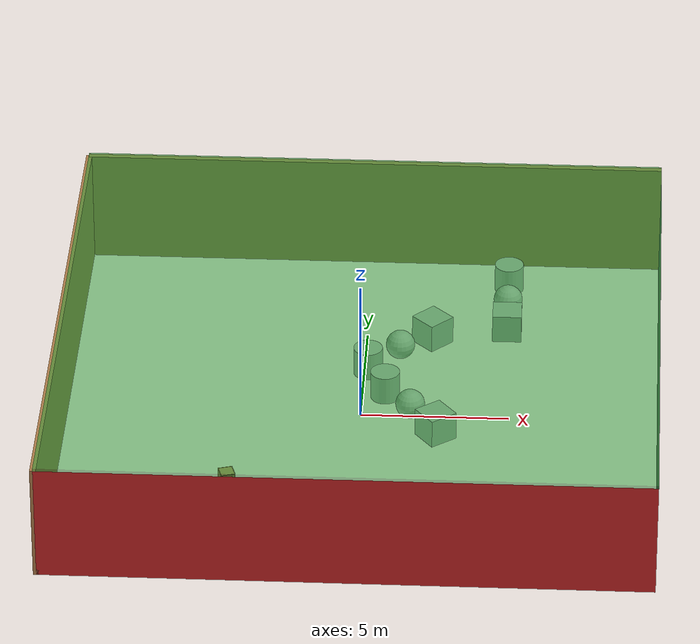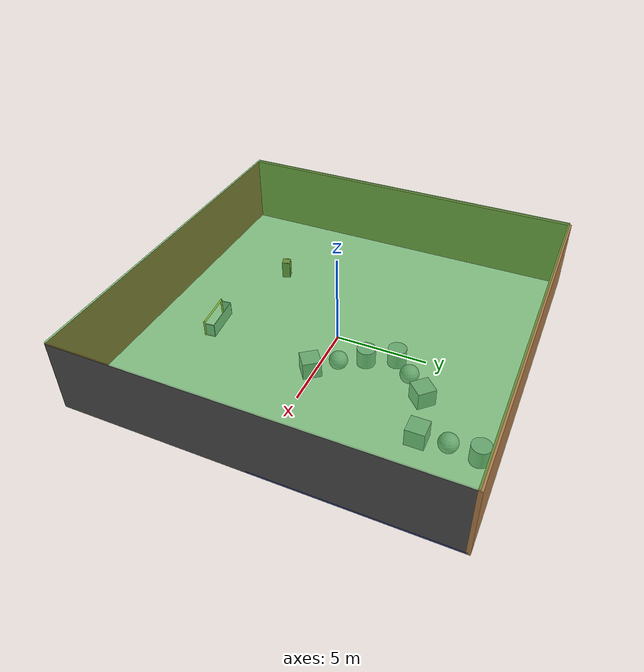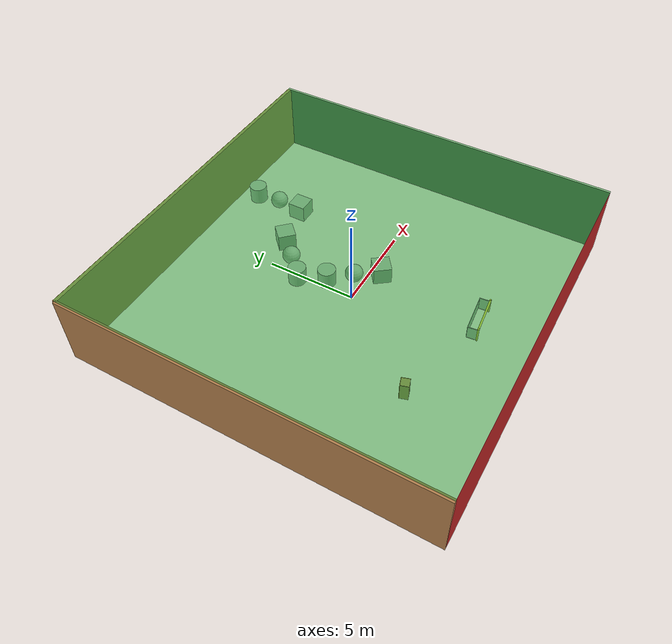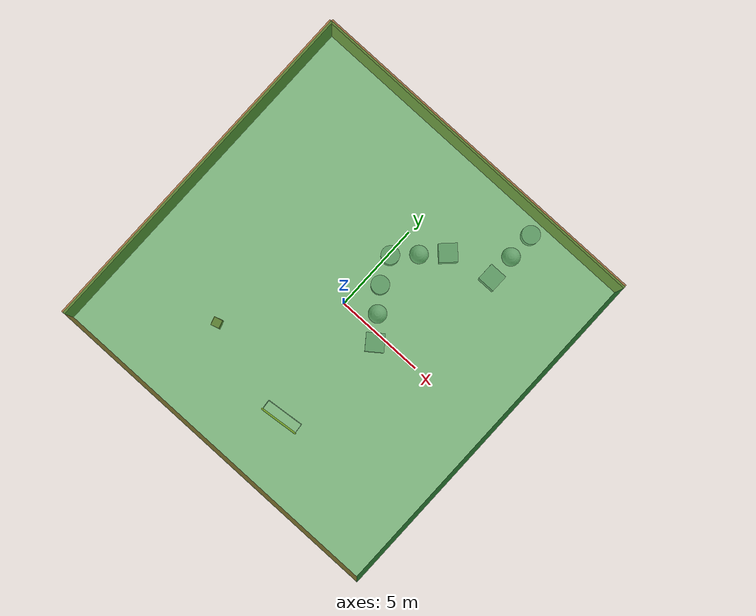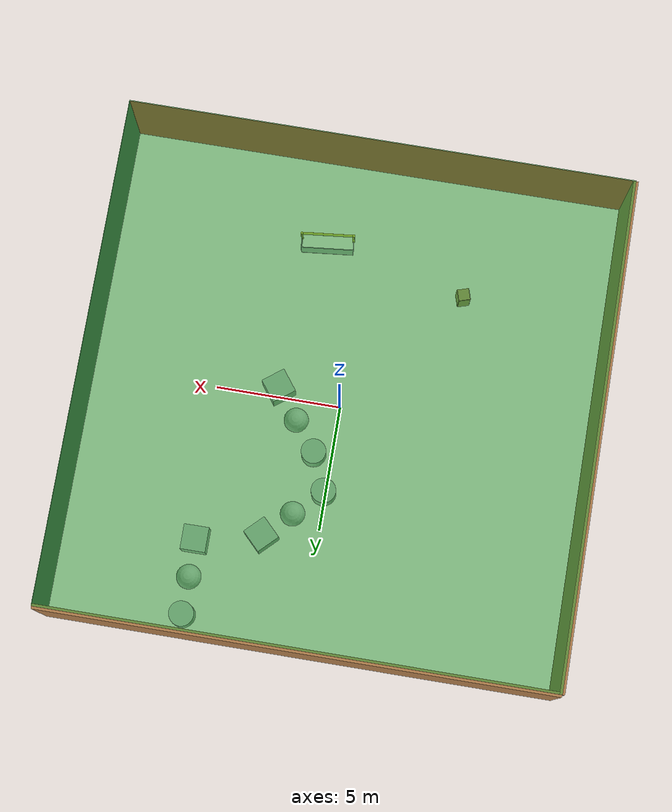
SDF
<sdf version="1.4">
 <world name="default">
  <physics type="ode">
   <max_step_size>0.001</max_step_size>
   <real_time_factor>1</real_time_factor>
   <real_time_update_rate>1000</real_time_update_rate>
   <gravity>0 0 -9.8</gravity>
  </physics>
  <scene><ambient>0.4 0.4 0.4 1</ambient><background>0.7 0.7 0.7 1</background><shadows>1</shadows></scene>
  <model name="Surrounding">
   <static>1</static>
   <link name="Ceiling">
    <collision name="Ceiling_Collision"><geometry><box><size>20 20 0.1</size></box></geometry></collision>
    <visual name="Ceiling_Visual">
     <geometry><box><size>20 20 0.1</size></box></geometry>
     <material>
      <script><uri>file://media/materials/scripts/gazebo.material</uri><name>Gazebo/GreenTransparent</name></script>
     </material>
    </visual>
    <pose>0 0 4.05 0 0 0</pose>
   </link>
   <link name="Wall_South">
    <collision name="Wall_South_Collision">
     <geometry><box><size>20 0 4</size></box></geometry>
     <pose>0 0 2 0 -0 0</pose>
    </collision>
    <visual name="Wall_South_Visual">
     <pose>0 0 2 0 -0 0</pose>
     <geometry><box><size>20 0 4</size></box></geometry>
     <material>
      <script><uri>file://media/materials/scripts/gazebo.material</uri><name>Gazebo/RedBright</name></script>
     </material>
    </visual>
    <velocity_decay><linear>0</linear><angular>0</angular></velocity_decay>
    <pose>0 -10 0 0 -0 0</pose>
   </link>
   <link name="Wall_East">
    <collision name="Wall_21_Collision">
     <geometry><box><size>20 0 4</size></box></geometry>
     <pose>0 0 2 0 -0 0</pose>
    </collision>
    <visual name="Wall_21_Visual">
     <pose>0 0 2 0 -0 0</pose>
     <geometry><box><size>20 0 4</size></box></geometry>
     <material>
      <script><uri>file://media/materials/scripts/gazebo.material</uri><name>Gazebo/DarkGrey</name></script>
     </material>
    </visual>
    <velocity_decay><linear>0</linear><angular>0</angular></velocity_decay>
    <pose>10 0 0 0 -0 1.5708</pose>
   </link>
   <link name="Wall_North">
    <collision name="Wall_22_Collision">
     <geometry><box><size>20 0.2 4</size></box></geometry>
     <pose>0 0 2 0 -0 0</pose>
    </collision>
    <visual name="Wall_22_Visual">
     <pose>0 0 2 0 -0 0</pose>
     <geometry><box><size>20 0.2 4</size></box></geometry>
     <material>
      <script><uri>file://media/materials/scripts/gazebo.material</uri><name>Gazebo/WoodFloor</name></script>
     </material>
    </visual>
    <velocity_decay><linear>0</linear><angular>0</angular></velocity_decay>
    <pose>0 10 0 0 -0 0</pose>
   </link>
   <link name="Wall_West">
    <collision name="Wall_23_Collision">
     <geometry><box><size>20 0.2 4</size></box></geometry>
     <pose>0 0 2 0 -0 0</pose>
    </collision>
    <visual name="Wall_23_Visual">
     <pose>0 0 2 0 -0 0</pose>
     <geometry><box><size>20 0.2 4</size></box></geometry>
     <material>
      <script><uri>file://media/materials/scripts/gazebo.material</uri><name>Gazebo/Wood</name></script>
     </material>
    </visual>
    <velocity_decay><linear>0</linear><angular>0</angular></velocity_decay>
    <pose>-10 0 0 0 0 -1.5708</pose>
   </link>
   <link name="Ground_link">
    <collision name="collision">
     <pose>0 0 .05 0 -0 0</pose>
     <geometry><box><size>20 20 0.1</size></box></geometry>
    </collision>
    <visual name="visual">
     <pose>0 0 .05 0 -0 0</pose>
     <geometry><box><size>20 20 0.1</size></box></geometry>
     <material>
      <script><uri>file://media/materials/scripts/gazebo.material</uri><name>Gazebo/BlueTransparent</name></script>
     </material>
    </visual>
   </link>
   <static>1</static>
  </model>
  <spherical_coordinates>
   <surface_model>EARTH_WGS84</surface_model>
   <latitude_deg>0</latitude_deg>
   <longitude_deg>0</longitude_deg>
   <elevation>0</elevation>
   <heading_deg>0</heading_deg>
  </spherical_coordinates>
  <light name="lightball_0" type="diffuse">
   <diffuse>0.8 0.8 0.8 1</diffuse>
   <specular>0.2 0.2 0.2 1</specular>
   <attenuation>
    <range>100</range>
    <constant>0.7</constant>
    <linear>0.01</linear>
    <quadratic>0.001</quadratic>
   </attenuation>
   <direction>-0.5 0.1 -0.9</direction>
   <pose>-5.47530883925 1.55294142825 2.80174444593 0 0 0</pose>
  </light>
  <light name="lightball_1" type="diffuse">
   <diffuse>0.8 0.8 0.8 1</diffuse>
   <specular>0.2 0.2 0.2 1</specular>
   <attenuation>
    <range>100</range>
    <constant>0.7</constant>
    <linear>0.01</linear>
    <quadratic>0.001</quadratic>
   </attenuation>
   <direction>-0.5 0.1 -0.9</direction>
   <pose>-2.08320925146 -0.249660166815 2.19767639317 0 0 0</pose>
  </light>
  <light name="lightball_2" type="diffuse">
   <diffuse>0.8 0.8 0.8 1</diffuse>
   <specular>0.2 0.2 0.2 1</specular>
   <attenuation>
    <range>100</range>
    <constant>0.7</constant>
    <linear>0.01</linear>
    <quadratic>0.001</quadratic>
   </attenuation>
   <direction>-0.5 0.1 -0.9</direction>
   <pose>9.45485373752 -7.52137572082 0.518158806694 0 0 0</pose>
  </light>
  <light name="lightball_3" type="diffuse">
   <diffuse>0.8 0.8 0.8 1</diffuse>
   <specular>0.2 0.2 0.2 1</specular>
   <attenuation>
    <range>100</range>
    <constant>0.7</constant>
    <linear>0.01</linear>
    <quadratic>0.001</quadratic>
   </attenuation>
   <direction>-0.5 0.1 -0.9</direction>
   <pose>-1.88947275743 4.13019689076 1.33438369903 0 0 0</pose>
  </light>
  <light name="lightball_4" type="diffuse">
   <diffuse>0.8 0.8 0.8 1</diffuse>
   <specular>0.2 0.2 0.2 1</specular>
   <attenuation>
    <range>100</range>
    <constant>0.7</constant>
    <linear>0.01</linear>
    <quadratic>0.001</quadratic>
   </attenuation>
   <direction>-0.5 0.1 -0.9</direction>
   <pose>-6.0407638143 8.29052428507 0.656286092464 0 0 0</pose>
  </light>
  <include><uri>model://cabinet</uri><pose>-4.15952946057 -5.18721390926 0 0 0 1.87616901022</pose></include>
  <include>
   <uri>model://robocup_3Dsim_goal</uri>
   <pose>1.61358128446 -6.78226429349 0 0 0 1.67159726296</pose>
  </include>
  <include>
   <uri>model://textured_shapes</uri>
   <pose>1.64349712727 0.774169784381 0 0 0 0.648910081637</pose>
  </include>
  <include>
   <uri>model://textured_shapes</uri>
   <pose>1.1524412477 4.51391789228 0 0 0 2.35033645245</pose>
  </include>
  <include>
   <uri>model://textured_shapes</uri>
   <pose>4.77326370597 7.65180984502 0 0 0 0.00281925075301</pose>
  </include>
 </world>
</sdf>

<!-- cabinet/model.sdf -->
<sdf version="1.5">
  <model name="cabinet">
    <static>true</static>
    <link name="cabinet_bottom_plate">
      <inertial>
        <pose>0 0 -1 0 0 0</pose>
        <inertia>
          <ixx>2.050000</ixx>
          <ixy>0</ixy>
          <ixz>0</ixz>
          <iyy>2.050000</iyy>
          <iyz>0</iyz>
          <izz>2.050000</izz>
        </inertia>
        <mass>25.000000</mass>
      </inertial>
      <collision name="cabinet_bottom_plate_geom">
        <pose>0 0 0.010000 0 0 0</pose>
        <geometry>
          <box>
            <size>0.450000 0.450000 0.020000</size>
          </box>
        </geometry>
      </collision>
      <visual name="cabinet_bottom_plate_geom_visual">
        <pose>0 0 0.010000 0 0 0</pose>
        <geometry>
          <box>
            <size>0.450000 0.450000 0.020000</size>
          </box>
        </geometry>
        <material>
          <script>
            <uri>model://media/materials/scripts/gazebo.material</uri>
            <name>Gazebo/Wood</name>
          </script>
        </material>
      </visual>
      <collision name="cabinet_bottom_plate_geom_cabinet_back_plate">
        <pose>0.235000 0 0.510000 0 0 0</pose>
        <geometry>
          <box>
            <size>0.020000 0.450000 1.020000</size>
          </box>
        </geometry>
      </collision>
      <visual name="cabinet_bottom_plate_geom_cabinet_back_plate_visual">
        <pose>0.235000 0 0.510000 0 0 0</pose>
        <geometry>
          <box>
            <size>0.020000 0.450000 1.020000</size>
          </box>
        </geometry>
        <material>
          <script>
            <uri>model://media/materials/scripts/gazebo.material</uri>
            <name>Gazebo/Wood</name>
          </script>
        </material>
      </visual>
      <collision name="cabinet_bottom_plate_geom_cabinet_left_plate">
        <pose>0 0.235000 0.510000 0 0 0</pose>
        <geometry>
          <box>
            <size>0.450000 0.020000 1.020000</size>
          </box>
        </geometry>
      </collision>
      <visual name="cabinet_bottom_plate_geom_cabinet_left_plate_visual">
        <pose>0 0.235000 0.510000 0 0 0</pose>
        <geometry>
          <box>
            <size>0.450000 0.020000 1.020000</size>
          </box>
        </geometry>
        <material>
          <script>
            <uri>model://media/materials/scripts/gazebo.material</uri>
            <name>Gazebo/Wood</name>
          </script>
        </material>
      </visual>
      <collision name="cabinet_bottom_plate_geom_cabinet_middle_plate">
        <pose>0 0 0.510000 0 0 0</pose>
        <geometry>
          <box>
            <size>0.450000 0.450000 0.020000</size>
          </box>
        </geometry>
      </collision>
      <visual name="cabinet_bottom_plate_geom_cabinet_middle_plate_visual">
        <pose>0 0 0.510000 0 0 0</pose>
        <geometry>
          <box>
            <size>0.450000 0.450000 0.020000</size>
          </box>
        </geometry>
        <material>
          <script>
            <uri>model://media/materials/scripts/gazebo.material</uri>
            <name>Gazebo/Wood</name>
          </script>
        </material>
      </visual>
      <collision name="cabinet_bottom_plate_geom_cabinet_right_plate">
        <pose>0 -0.235000 0.510000 0 0 0</pose>
        <geometry>
          <box>
            <size>0.450000 0.020000 1.020000</size>
          </box>
        </geometry>
      </collision>
      <visual name="cabinet_bottom_plate_geom_cabinet_right_plate_visual">
        <pose>0 -0.235000 0.510000 0 0 0</pose>
        <geometry>
          <box>
            <size>0.450000 0.020000 1.020000</size>
          </box>
        </geometry>
        <material>
          <script>
            <uri>model://media/materials/scripts/gazebo.material</uri>
            <name>Gazebo/Wood</name>
          </script>
        </material>
      </visual>
      <collision name="cabinet_bottom_plate_geom_cabinet_top_plate">
        <pose>0 0 1.010000 0 0 0</pose>
        <geometry>
          <box>
            <size>0.450000 0.450000 0.020000</size>
          </box>
        </geometry>
      </collision>
      <visual name="cabinet_bottom_plate_geom_cabinet_top_plate_visual">
        <pose>0 0 1.010000 0 0 0</pose>
        <geometry>
          <box>
            <size>0.450000 0.450000 0.020000</size>
          </box>
        </geometry>
        <material>
          <script>
            <uri>model://media/materials/scripts/gazebo.material</uri>
            <name>Gazebo/Wood</name>
          </script>
        </material>
      </visual>
    </link>
  </model>
</sdf>

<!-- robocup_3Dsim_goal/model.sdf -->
<sdf version="1.5">
  <model name="robocup_3d_goal">
    <static>true</static>
    <link name="left_post">
      <pose>0 1.05 0.45 0 0 0</pose>
      <collision name="collision">
        <geometry>
          <cylinder>
            <radius>0.05</radius>
            <length>0.9</length>
          </cylinder>
        </geometry>
      </collision>
      <visual name="visual">
        <geometry>
          <cylinder>
            <radius>0.05</radius>
            <length>0.9</length>
          </cylinder>
        </geometry>
        <material>
          <script>
            <uri>file://media/materials/scripts/gazebo.material</uri>
            <name>Gazebo/ZincYellow</name>
          </script>
        </material>
      </visual>
    </link>
    <link name="left_support_horiz_lower">
      <pose>0.30 1.05 0.01 0 0 0</pose>
      <collision name="collision">
        <geometry>
          <box>
            <size>0.50 0.02 0.02</size>
          </box>
        </geometry>
      </collision>
      <visual name="visual">
        <geometry>
          <box>
            <size>0.50 0.02 0.02</size>
          </box>
        </geometry>
        <material>
          <script>
            <uri>file://media/materials/scripts/gazebo.material</uri>
            <name>Gazebo/White</name>
          </script>
        </material>
      </visual>
    </link>
    <link name="left_support_horiz_upper">
      <pose>0.30 1.05 0.79 0 0 0</pose>
      <collision name="collision">
        <geometry>
          <box>
            <size>0.50 0.02 0.02</size>
          </box>
        </geometry>
      </collision>
      <visual name="visual">
        <geometry>
          <box>
            <size>0.50 0.02 0.02</size>
          </box>
        </geometry>
        <material>
          <script>
            <uri>file://media/materials/scripts/gazebo.material</uri>
            <name>Gazebo/White</name>
          </script>
        </material>
      </visual>
    </link>
    <link name="left_support_vertical">
      <pose>0.56 1.05 0.4 0 1.5708 0</pose>
      <collision name="collision">
        <geometry>
          <box>
            <size>0.80 0.02 0.02</size>
          </box>
        </geometry>
      </collision>
      <visual name="visual">
        <geometry>
          <box>
            <size>0.80 0.02 0.02</size>
          </box>
        </geometry>
        <material>
          <script>
            <uri>file://media/materials/scripts/gazebo.material</uri>
            <name>Gazebo/White</name>
          </script>
        </material>
      </visual>
    </link>
    <link name="right_support_horiz_lower">
      <pose>0.30 -1.05 0.01 0 0 0</pose>
      <collision name="collision">
        <geometry>
          <box>
            <size>0.50 0.02 0.02</size>
          </box>
        </geometry>
      </collision>
      <visual name="visual">
        <geometry>
          <box>
            <size>0.50 0.02 0.02</size>
          </box>
        </geometry>
        <material>
          <script>
            <uri>file://media/materials/scripts/gazebo.material</uri>
            <name>Gazebo/White</name>
          </script>
        </material>
      </visual>
    </link>
    <link name="right_support_horiz_upper">
      <pose>0.30 -1.05 0.79 0 0 0</pose>
      <collision name="collision">
        <geometry>
          <box>
            <size>0.50 0.02 0.02</size>
          </box>
        </geometry>
      </collision>
      <visual name="visual">
        <geometry>
          <box>
            <size>0.50 0.02 0.02</size>
          </box>
        </geometry>
        <material>
          <script>
            <uri>file://media/materials/scripts/gazebo.material</uri>
            <name>Gazebo/White</name>
          </script>
        </material>
      </visual>
    </link>
    <link name="right_support_vertical">
      <pose>0.56 -1.05 0.4 0 1.5708 0</pose>
      <collision name="collision">
        <geometry>
          <box>
            <size>0.80 0.02 0.02</size>
          </box>
        </geometry>
      </collision>
      <visual name="visual">
        <geometry>
          <box>
            <size>0.80 0.02 0.02</size>
          </box>
        </geometry>
        <material>
          <script>
            <uri>file://media/materials/scripts/gazebo.material</uri>
            <name>Gazebo/White</name>
          </script>
        </material>
      </visual>
    </link>
    <link name="center_support_horiz_lower">
      <pose>0.56 0 0.01 0 1.5708 0</pose>
      <collision name="collision">
        <geometry>
          <box>
            <size>0.02 2.08 0.02</size>
          </box>
        </geometry>
      </collision>
      <visual name="visual">
        <geometry>
          <box>
            <size>0.02 2.08 0.02</size>
          </box>
        </geometry>
        <material>
          <script>
            <uri>file://media/materials/scripts/gazebo.material</uri>
            <name>Gazebo/White</name>
          </script>
        </material>
      </visual>
    </link>
    <link name="center_support_horiz_upper">
      <pose>0.56 0 0.79 0 1.5708 0</pose>
      <collision name="collision">
        <geometry>
          <box>
            <size>0.02 2.08 0.02</size>
          </box>
        </geometry>
      </collision>
      <visual name="visual">
        <geometry>
          <box>
            <size>0.02 2.08 0.02</size>
          </box>
        </geometry>
        <material>
          <script>
            <uri>file://media/materials/scripts/gazebo.material</uri>
            <name>Gazebo/White</name>
          </script>
        </material>
      </visual>
    </link>
    <link name="right_post">
      <pose>0 -1.05 0.45 0 0 0</pose>
      <collision name="collision">
        <geometry>
          <cylinder>
            <radius>0.05</radius>
            <length>0.9</length>
          </cylinder>
        </geometry>
      </collision>
      <visual name="visual">
        <geometry>
          <cylinder>
            <radius>0.05</radius>
            <length>0.9</length>
          </cylinder>
        </geometry>
        <material>
          <script>
            <uri>file://media/materials/scripts/gazebo.material</uri>
            <name>Gazebo/ZincYellow</name>
          </script>
        </material>
      </visual>
    </link>
    <link name="crossbar">
      <pose>0 0 0.85 1.57 1.57 0</pose>
      <collision name="collision">
        <geometry>
          <cylinder>
            <radius>0.05</radius>
            <length>2.0</length>
          </cylinder>
        </geometry>
      </collision>
      <visual name="visual">
        <geometry>
          <cylinder>
            <radius>0.05</radius>
            <length>2.0</length>
          </cylinder>
        </geometry>
        <material>
          <script>
            <uri>file://media/materials/scripts/gazebo.material</uri>
            <name>Gazebo/ZincYellow</name>
          </script>
        </material>
      </visual>
    </link>
    <link name="center_net">
      <pose>0.56 0 0.40 0 0 0</pose>
      <collision name="collision">
        <geometry>
          <box>
            <size>0.01 2.1 0.80</size>
          </box>
        </geometry>
      </collision>
      <visual name="visual">
        <geometry>
          <box>
            <size>0.01 2.1 0.80</size>
          </box>
        </geometry>
        <material>
          <script>
            <uri>model://../model_source/models/robocup09_spl_field/materials/scripts/</uri>
            <uri>model://../model_source/models/robocup09_spl_field/materials/textures/</uri>
            <name>RoboCup/Net</name>
          </script>
        </material>
      </visual>
    </link>
    <link name="left_net">
      <pose>0.30 1.05 0.40 0 0 0</pose>
      <collision name="collision">
        <geometry>
          <box>
            <size>0.50 0.01 0.76</size>
          </box>
        </geometry>
      </collision>
      <visual name="visual">
        <geometry>
          <box>
            <size>0.50 0.01 0.76</size>
          </box>
        </geometry>
        <material>
          <script>
            <uri>model://../model_source/models/robocup09_spl_field/materials/scripts/</uri>
            <uri>model://../model_source/models/robocup09_spl_field/materials/textures/</uri>
            <name>RoboCup/Net</name>
          </script>
        </material>
      </visual>
    </link>
    <link name="right_net">
      <pose>0.30 -1.05 0.40 0 0 0</pose>
      <collision name="collision">
        <geometry>
          <box>
            <size>0.50 0.01 0.76</size>
          </box>
        </geometry>
      </collision>
      <visual name="visual">
        <geometry>
          <box>
            <size>0.50 0.01 0.76</size>
          </box>
        </geometry>
        <material>
          <script>
            <uri>model://../model_source/models/robocup09_spl_field/materials/scripts/</uri>
            <uri>model://../model_source/models/robocup09_spl_field/materials/textures/</uri>
            <name>RoboCup/Net</name>
          </script>
        </material>
      </visual>
    </link>
  </model>
</sdf>

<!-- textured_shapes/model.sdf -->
<sdf version="1.6">
  <model name="textured_shapes">
    <pose>0 0 0.5 0 0 0</pose>
    <link name="box">
      <pose>0 -1.5 0 0 0 0</pose>
      <collision name="collision">
        <geometry>
          <box>
            <size>1 1 1</size>
          </box>
        </geometry>
      </collision>
      <visual name="visual">
        <geometry>
          <box>
            <size>1 1 1</size>
          </box>
        </geometry>
        <material>
          <script>
            <uri>model://../model_source/models/textured_shapes/materials/scripts</uri>
            <uri>model://../model_source/models/textured_shapes/materials/textures</uri>
            <name>TexturedShape/Squares</name>
          </script>
        </material>
      </visual>
    </link>
    <link name="sphere">
      <collision name="collision">
        <geometry>
          <sphere>
            <radius>0.5</radius>
          </sphere>
        </geometry>
      </collision>
      <visual name="visual">
        <geometry>
          <sphere>
            <radius>0.5</radius>
          </sphere>
        </geometry>
        <material>
          <script>
            <uri>model://../model_source/models/textured_shapes/materials/scripts</uri>
            <uri>model://../model_source/models/textured_shapes/materials/textures</uri>
            <name>TexturedShape/Squares</name>
          </script>
        </material>
      </visual>
    </link>
    <link name="cylinder">
      <pose>0 1.5 0 0 0 0</pose>
      <collision name="collision">
        <geometry>
          <cylinder>
            <radius>0.5</radius>
            <length>1</length>
          </cylinder>
        </geometry>
      </collision>
      <visual name="visual">
        <geometry>
          <cylinder>
            <radius>0.5</radius>
            <length>1</length>
          </cylinder>
        </geometry>
        <material>
          <script>
            <uri>model://../model_source/models/textured_shapes/materials/scripts</uri>
            <uri>model://../model_source/models/textured_shapes/materials/textures</uri>
            <name>TexturedShape/Squares</name>
          </script>
        </material>
      </visual>
    </link>
  </model>
</sdf>
